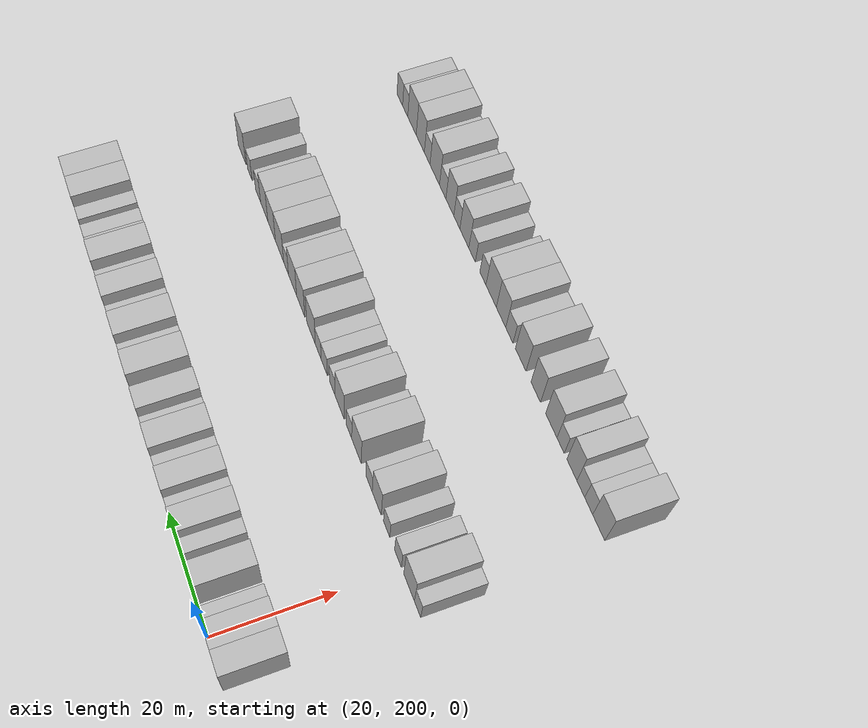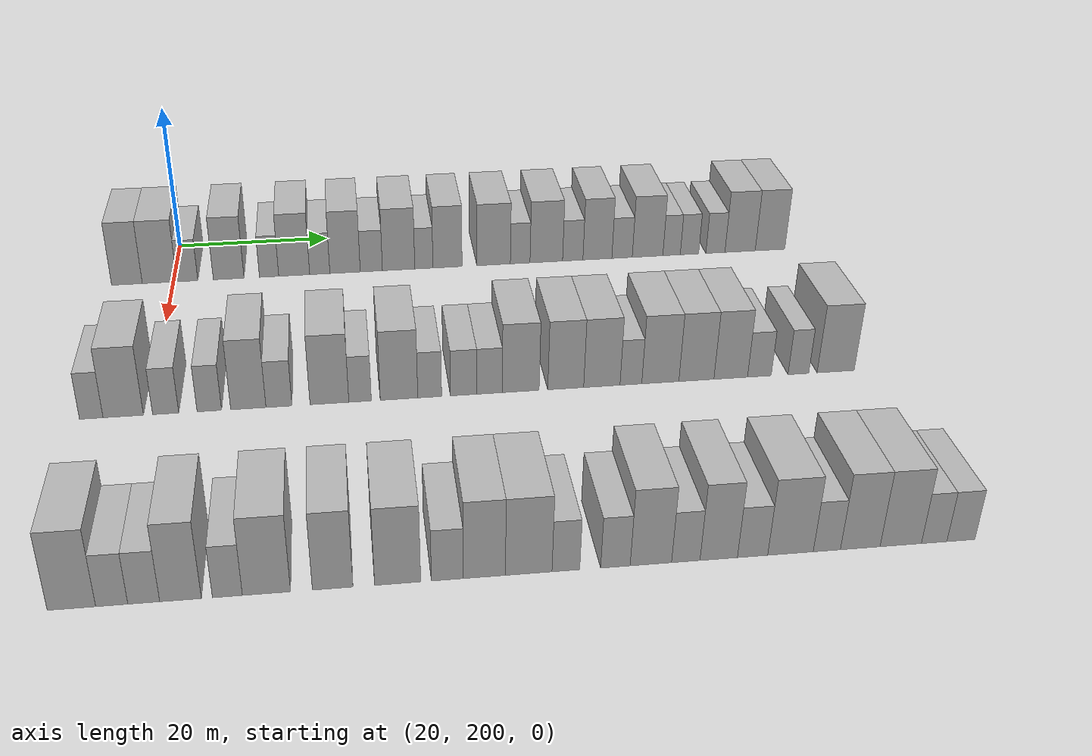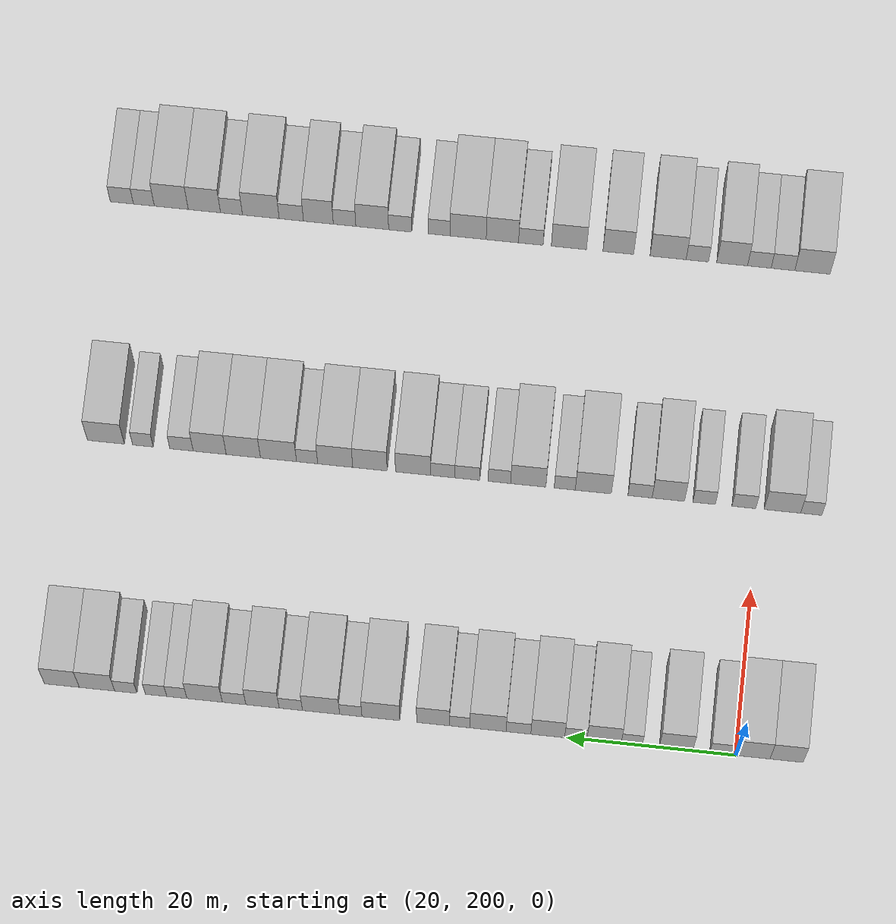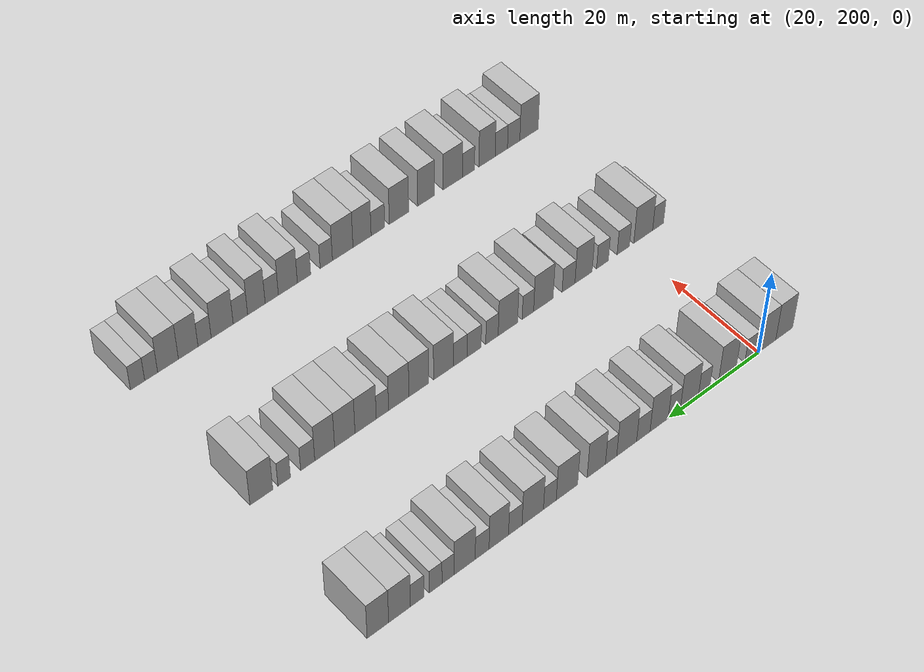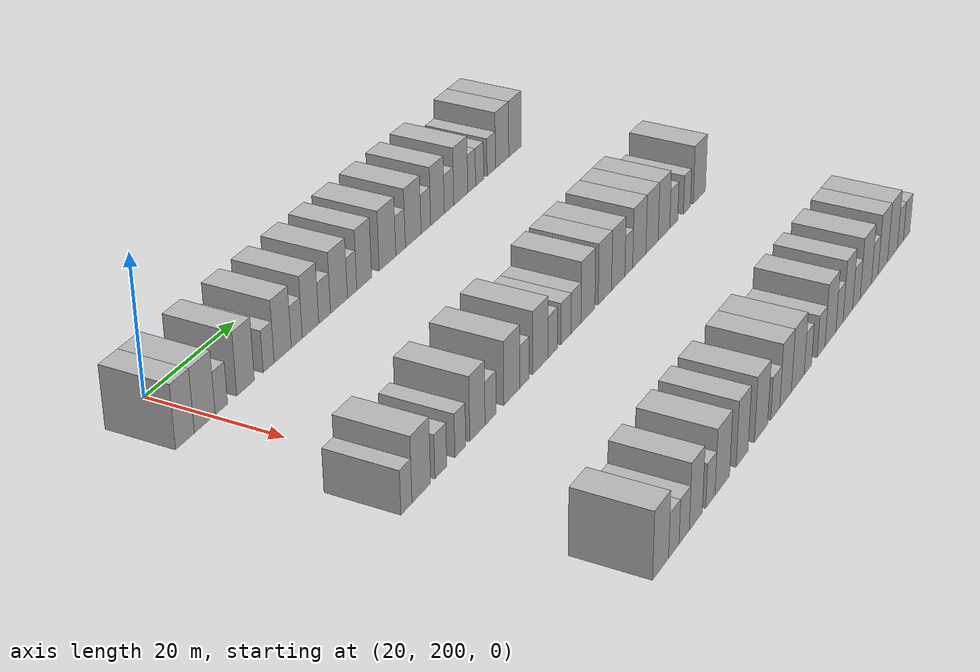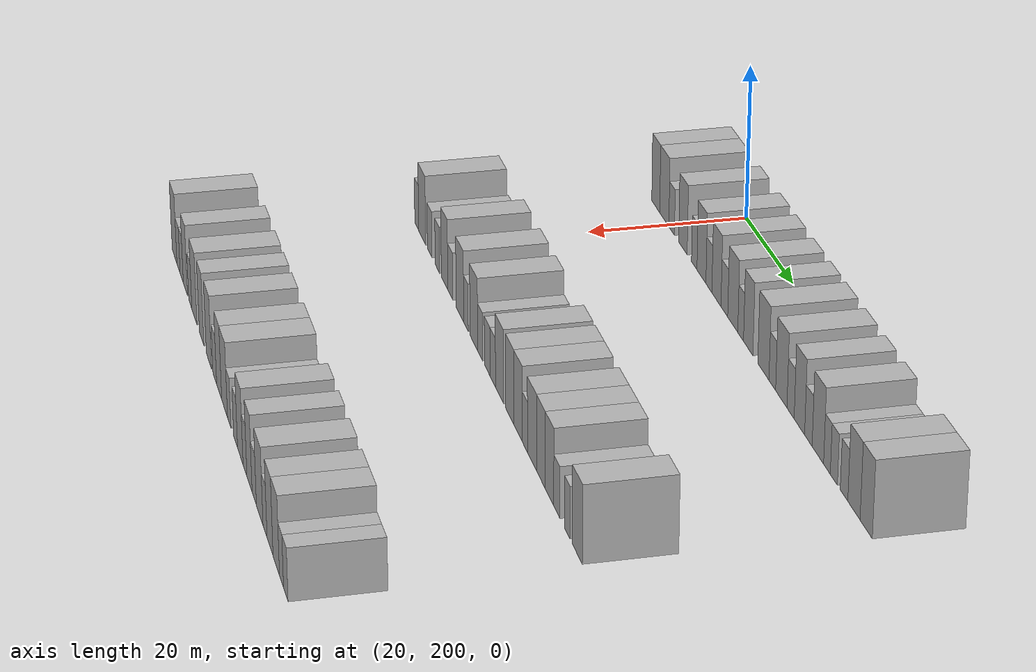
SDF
<sdf version="1.6">
 <world name="default">
  <model name="building_123">
   <static>1</static>
   <pose>25.0000 194.0577 0 0.000000 0.000000 0.000000</pose>
   <link name="link">
    <pose>0 0 4.50 0 0 0</pose>
    <collision name="collision"><geometry><box><size>10.0000 3.9071 9.0000</size></box></geometry></collision>
    <visual name="visual">
     <cast_shadows>0</cast_shadows>
     <geometry><box><size>10.0000 3.9071 9.0000</size></box></geometry>
     <material>
      <script>
       <uri>model://HANNAS_wall/materials/scripts</uri>
       <uri>model://HANNAS_wall/materials/textures</uri>
       <name>vrc/HANNAS_wall</name>
      </script>
     </material>
    </visual>
   </link>
  </model>
  <model name="building_124">
   <static>1</static>
   <pose>25.0000 198.2306 0 0.000000 0.000000 0.000000</pose>
   <link name="link">
    <pose>0 0 4.50 0 0 0</pose>
    <collision name="collision"><geometry><box><size>10.0000 4.4389 9.0000</size></box></geometry></collision>
    <visual name="visual">
     <cast_shadows>0</cast_shadows>
     <geometry><box><size>10.0000 4.4389 9.0000</size></box></geometry>
     <material>
      <script>
       <uri>model://HANNAS_wall/materials/scripts</uri>
       <uri>model://HANNAS_wall/materials/textures</uri>
       <name>vrc/HANNAS_wall</name>
      </script>
     </material>
    </visual>
   </link>
  </model>
  <model name="building_125">
   <static>1</static>
   <pose>25.0000 201.7926 0 0.000000 0.000000 0.000000</pose>
   <link name="link">
    <pose>0 0 3.00 0 0 0</pose>
    <collision name="collision"><geometry><box><size>10.0000 2.6850 6.0000</size></box></geometry></collision>
    <visual name="visual">
     <cast_shadows>0</cast_shadows>
     <geometry><box><size>10.0000 2.6850 6.0000</size></box></geometry>
     <material>
      <script>
       <uri>model://HANNAS_wall/materials/scripts</uri>
       <uri>model://HANNAS_wall/materials/textures</uri>
       <name>vrc/HANNAS_wall</name>
      </script>
     </material>
    </visual>
   </link>
  </model>
  <model name="building_126">
   <static>1</static>
   <pose>25.0000 207.1161 0 0.000000 0.000000 0.000000</pose>
   <link name="link">
    <pose>0 0 4.50 0 0 0</pose>
    <collision name="collision"><geometry><box><size>10.0000 3.9621 9.0000</size></box></geometry></collision>
    <visual name="visual">
     <cast_shadows>0</cast_shadows>
     <geometry><box><size>10.0000 3.9621 9.0000</size></box></geometry>
     <material>
      <script>
       <uri>model://HANNAS_wall/materials/scripts</uri>
       <uri>model://HANNAS_wall/materials/textures</uri>
       <name>vrc/HANNAS_wall</name>
      </script>
     </material>
    </visual>
   </link>
  </model>
  <model name="building_127">
   <static>1</static>
   <pose>25.0000 212.3497 0 0.000000 0.000000 0.000000</pose>
   <link name="link">
    <pose>0 0 3.00 0 0 0</pose>
    <collision name="collision"><geometry><box><size>10.0000 2.5050 6.0000</size></box></geometry></collision>
    <visual name="visual">
     <cast_shadows>0</cast_shadows>
     <geometry><box><size>10.0000 2.5050 6.0000</size></box></geometry>
     <material>
      <script>
       <uri>model://HANNAS_wall/materials/scripts</uri>
       <uri>model://HANNAS_wall/materials/textures</uri>
       <name>vrc/HANNAS_wall</name>
      </script>
     </material>
    </visual>
   </link>
  </model>
  <model name="building_128">
   <static>1</static>
   <pose>25.0000 215.6218 0 0.000000 0.000000 0.000000</pose>
   <link name="link">
    <pose>0 0 4.50 0 0 0</pose>
    <collision name="collision"><geometry><box><size>10.0000 4.0392 9.0000</size></box></geometry></collision>
    <visual name="visual">
     <cast_shadows>0</cast_shadows>
     <geometry><box><size>10.0000 4.0392 9.0000</size></box></geometry>
     <material>
      <script>
       <uri>model://HANNAS_wall/materials/scripts</uri>
       <uri>model://HANNAS_wall/materials/textures</uri>
       <name>vrc/HANNAS_wall</name>
      </script>
     </material>
    </visual>
   </link>
  </model>
  <model name="building_129">
   <static>1</static>
   <pose>25.0000 218.9604 0 0.000000 0.000000 0.000000</pose>
   <link name="link">
    <pose>0 0 3.00 0 0 0</pose>
    <collision name="collision"><geometry><box><size>10.0000 2.6381 6.0000</size></box></geometry></collision>
    <visual name="visual">
     <cast_shadows>0</cast_shadows>
     <geometry><box><size>10.0000 2.6381 6.0000</size></box></geometry>
     <material>
      <script>
       <uri>model://HANNAS_wall/materials/scripts</uri>
       <uri>model://HANNAS_wall/materials/textures</uri>
       <name>vrc/HANNAS_wall</name>
      </script>
     </material>
    </visual>
   </link>
  </model>
  <model name="building_130">
   <static>1</static>
   <pose>25.0000 222.2775 0 0.000000 0.000000 0.000000</pose>
   <link name="link">
    <pose>0 0 4.50 0 0 0</pose>
    <collision name="collision"><geometry><box><size>10.0000 3.9960 9.0000</size></box></geometry></collision>
    <visual name="visual">
     <cast_shadows>0</cast_shadows>
     <geometry><box><size>10.0000 3.9960 9.0000</size></box></geometry>
     <material>
      <script>
       <uri>model://HANNAS_wall/materials/scripts</uri>
       <uri>model://HANNAS_wall/materials/textures</uri>
       <name>vrc/HANNAS_wall</name>
      </script>
     </material>
    </visual>
   </link>
  </model>
  <model name="building_131">
   <static>1</static>
   <pose>25.0000 225.7371 0 0.000000 0.000000 0.000000</pose>
   <link name="link">
    <pose>0 0 3.00 0 0 0</pose>
    <collision name="collision"><geometry><box><size>10.0000 2.9233 6.0000</size></box></geometry></collision>
    <visual name="visual">
     <cast_shadows>0</cast_shadows>
     <geometry><box><size>10.0000 2.9233 6.0000</size></box></geometry>
     <material>
      <script>
       <uri>model://HANNAS_wall/materials/scripts</uri>
       <uri>model://HANNAS_wall/materials/textures</uri>
       <name>vrc/HANNAS_wall</name>
      </script>
     </material>
    </visual>
   </link>
  </model>
  <model name="building_132">
   <static>1</static>
   <pose>25.0000 229.3410 0 0.000000 0.000000 0.000000</pose>
   <link name="link">
    <pose>0 0 4.50 0 0 0</pose>
    <collision name="collision"><geometry><box><size>10.0000 4.2844 9.0000</size></box></geometry></collision>
    <visual name="visual">
     <cast_shadows>0</cast_shadows>
     <geometry><box><size>10.0000 4.2844 9.0000</size></box></geometry>
     <material>
      <script>
       <uri>model://HANNAS_wall/materials/scripts</uri>
       <uri>model://HANNAS_wall/materials/textures</uri>
       <name>vrc/HANNAS_wall</name>
      </script>
     </material>
    </visual>
   </link>
  </model>
  <model name="building_133">
   <static>1</static>
   <pose>25.0000 232.6871 0 0.000000 0.000000 0.000000</pose>
   <link name="link">
    <pose>0 0 3.00 0 0 0</pose>
    <collision name="collision"><geometry><box><size>10.0000 2.4078 6.0000</size></box></geometry></collision>
    <visual name="visual">
     <cast_shadows>0</cast_shadows>
     <geometry><box><size>10.0000 2.4078 6.0000</size></box></geometry>
     <material>
      <script>
       <uri>model://HANNAS_wall/materials/scripts</uri>
       <uri>model://HANNAS_wall/materials/textures</uri>
       <name>vrc/HANNAS_wall</name>
      </script>
     </material>
    </visual>
   </link>
  </model>
  <model name="building_134">
   <static>1</static>
   <pose>25.0000 235.8330 0 0.000000 0.000000 0.000000</pose>
   <link name="link">
    <pose>0 0 4.50 0 0 0</pose>
    <collision name="collision"><geometry><box><size>10.0000 3.8840 9.0000</size></box></geometry></collision>
    <visual name="visual">
     <cast_shadows>0</cast_shadows>
     <geometry><box><size>10.0000 3.8840 9.0000</size></box></geometry>
     <material>
      <script>
       <uri>model://HANNAS_wall/materials/scripts</uri>
       <uri>model://HANNAS_wall/materials/textures</uri>
       <name>vrc/HANNAS_wall</name>
      </script>
     </material>
    </visual>
   </link>
  </model>
  <model name="building_135">
   <static>1</static>
   <pose>25.0000 242.0177 0 0.000000 0.000000 0.000000</pose>
   <link name="link">
    <pose>0 0 4.50 0 0 0</pose>
    <collision name="collision"><geometry><box><size>10.0000 4.4853 9.0000</size></box></geometry></collision>
    <visual name="visual">
     <cast_shadows>0</cast_shadows>
     <geometry><box><size>10.0000 4.4853 9.0000</size></box></geometry>
     <material>
      <script>
       <uri>model://HANNAS_wall/materials/scripts</uri>
       <uri>model://HANNAS_wall/materials/textures</uri>
       <name>vrc/HANNAS_wall</name>
      </script>
     </material>
    </visual>
   </link>
  </model>
  <model name="building_136">
   <static>1</static>
   <pose>25.0000 245.5828 0 0.000000 0.000000 0.000000</pose>
   <link name="link">
    <pose>0 0 3.00 0 0 0</pose>
    <collision name="collision"><geometry><box><size>10.0000 2.6449 6.0000</size></box></geometry></collision>
    <visual name="visual">
     <cast_shadows>0</cast_shadows>
     <geometry><box><size>10.0000 2.6449 6.0000</size></box></geometry>
     <material>
      <script>
       <uri>model://HANNAS_wall/materials/scripts</uri>
       <uri>model://HANNAS_wall/materials/textures</uri>
       <name>vrc/HANNAS_wall</name>
      </script>
     </material>
    </visual>
   </link>
  </model>
  <model name="building_137">
   <static>1</static>
   <pose>25.0000 249.1103 0 0.000000 0.000000 0.000000</pose>
   <link name="link">
    <pose>0 0 4.50 0 0 0</pose>
    <collision name="collision"><geometry><box><size>10.0000 4.4101 9.0000</size></box></geometry></collision>
    <visual name="visual">
     <cast_shadows>0</cast_shadows>
     <geometry><box><size>10.0000 4.4101 9.0000</size></box></geometry>
     <material>
      <script>
       <uri>model://HANNAS_wall/materials/scripts</uri>
       <uri>model://HANNAS_wall/materials/textures</uri>
       <name>vrc/HANNAS_wall</name>
      </script>
     </material>
    </visual>
   </link>
  </model>
  <model name="building_138">
   <static>1</static>
   <pose>25.0000 252.6983 0 0.000000 0.000000 0.000000</pose>
   <link name="link">
    <pose>0 0 3.00 0 0 0</pose>
    <collision name="collision"><geometry><box><size>10.0000 2.7658 6.0000</size></box></geometry></collision>
    <visual name="visual">
     <cast_shadows>0</cast_shadows>
     <geometry><box><size>10.0000 2.7658 6.0000</size></box></geometry>
     <material>
      <script>
       <uri>model://HANNAS_wall/materials/scripts</uri>
       <uri>model://HANNAS_wall/materials/textures</uri>
       <name>vrc/HANNAS_wall</name>
      </script>
     </material>
    </visual>
   </link>
  </model>
  <model name="building_139">
   <static>1</static>
   <pose>25.0000 256.0548 0 0.000000 0.000000 0.000000</pose>
   <link name="link">
    <pose>0 0 4.50 0 0 0</pose>
    <collision name="collision"><geometry><box><size>10.0000 3.9474 9.0000</size></box></geometry></collision>
    <visual name="visual">
     <cast_shadows>0</cast_shadows>
     <geometry><box><size>10.0000 3.9474 9.0000</size></box></geometry>
     <material>
      <script>
       <uri>model://HANNAS_wall/materials/scripts</uri>
       <uri>model://HANNAS_wall/materials/textures</uri>
       <name>vrc/HANNAS_wall</name>
      </script>
     </material>
    </visual>
   </link>
  </model>
  <model name="building_140">
   <static>1</static>
   <pose>25.0000 259.4243 0 0.000000 0.000000 0.000000</pose>
   <link name="link">
    <pose>0 0 3.00 0 0 0</pose>
    <collision name="collision"><geometry><box><size>10.0000 2.7915 6.0000</size></box></geometry></collision>
    <visual name="visual">
     <cast_shadows>0</cast_shadows>
     <geometry><box><size>10.0000 2.7915 6.0000</size></box></geometry>
     <material>
      <script>
       <uri>model://HANNAS_wall/materials/scripts</uri>
       <uri>model://HANNAS_wall/materials/textures</uri>
       <name>vrc/HANNAS_wall</name>
      </script>
     </material>
    </visual>
   </link>
  </model>
  <model name="building_141">
   <static>1</static>
   <pose>25.0000 262.9224 0 0.000000 0.000000 0.000000</pose>
   <link name="link">
    <pose>0 0 4.50 0 0 0</pose>
    <collision name="collision"><geometry><box><size>10.0000 4.2047 9.0000</size></box></geometry></collision>
    <visual name="visual">
     <cast_shadows>0</cast_shadows>
     <geometry><box><size>10.0000 4.2047 9.0000</size></box></geometry>
     <material>
      <script>
       <uri>model://HANNAS_wall/materials/scripts</uri>
       <uri>model://HANNAS_wall/materials/textures</uri>
       <name>vrc/HANNAS_wall</name>
      </script>
     </material>
    </visual>
   </link>
  </model>
  <model name="building_142">
   <static>1</static>
   <pose>25.0000 266.2257 0 0.000000 0.000000 0.000000</pose>
   <link name="link">
    <pose>0 0 3.00 0 0 0</pose>
    <collision name="collision"><geometry><box><size>10.0000 2.4020 6.0000</size></box></geometry></collision>
    <visual name="visual">
     <cast_shadows>0</cast_shadows>
     <geometry><box><size>10.0000 2.4020 6.0000</size></box></geometry>
     <material>
      <script>
       <uri>model://HANNAS_wall/materials/scripts</uri>
       <uri>model://HANNAS_wall/materials/textures</uri>
       <name>vrc/HANNAS_wall</name>
      </script>
     </material>
    </visual>
   </link>
  </model>
  <model name="building_143">
   <static>1</static>
   <pose>25.0000 268.6956 0 0.000000 0.000000 0.000000</pose>
   <link name="link">
    <pose>0 0 3.00 0 0 0</pose>
    <collision name="collision"><geometry><box><size>10.0000 2.5378 6.0000</size></box></geometry></collision>
    <visual name="visual">
     <cast_shadows>0</cast_shadows>
     <geometry><box><size>10.0000 2.5378 6.0000</size></box></geometry>
     <material>
      <script>
       <uri>model://HANNAS_wall/materials/scripts</uri>
       <uri>model://HANNAS_wall/materials/textures</uri>
       <name>vrc/HANNAS_wall</name>
      </script>
     </material>
    </visual>
   </link>
  </model>
  <model name="building_144">
   <static>1</static>
   <pose>25.0000 272.2869 0 0.000000 0.000000 0.000000</pose>
   <link name="link">
    <pose>0 0 3.00 0 0 0</pose>
    <collision name="collision"><geometry><box><size>10.0000 2.6449 6.0000</size></box></geometry></collision>
    <visual name="visual">
     <cast_shadows>0</cast_shadows>
     <geometry><box><size>10.0000 2.6449 6.0000</size></box></geometry>
     <material>
      <script>
       <uri>model://HANNAS_wall/materials/scripts</uri>
       <uri>model://HANNAS_wall/materials/textures</uri>
       <name>vrc/HANNAS_wall</name>
      </script>
     </material>
    </visual>
   </link>
  </model>
  <model name="building_145">
   <static>1</static>
   <pose>25.0000 275.7179 0 0.000000 0.000000 0.000000</pose>
   <link name="link">
    <pose>0 0 4.50 0 0 0</pose>
    <collision name="collision"><geometry><box><size>10.0000 4.2171 9.0000</size></box></geometry></collision>
    <visual name="visual">
     <cast_shadows>0</cast_shadows>
     <geometry><box><size>10.0000 4.2171 9.0000</size></box></geometry>
     <material>
      <script>
       <uri>model://HANNAS_wall/materials/scripts</uri>
       <uri>model://HANNAS_wall/materials/textures</uri>
       <name>vrc/HANNAS_wall</name>
      </script>
     </material>
    </visual>
   </link>
  </model>
  <model name="building_146">
   <static>1</static>
   <pose>25.0000 279.8933 0 0.000000 0.000000 0.000000</pose>
   <link name="link">
    <pose>0 0 4.50 0 0 0</pose>
    <collision name="collision"><geometry><box><size>10.0000 4.1337 9.0000</size></box></geometry></collision>
    <visual name="visual">
     <cast_shadows>0</cast_shadows>
     <geometry><box><size>10.0000 4.1337 9.0000</size></box></geometry>
     <material>
      <script>
       <uri>model://HANNAS_wall/materials/scripts</uri>
       <uri>model://HANNAS_wall/materials/textures</uri>
       <name>vrc/HANNAS_wall</name>
      </script>
     </material>
    </visual>
   </link>
  </model>
  <model name="building_265">
   <static>1</static>
   <pose>55.0000 193.6743 0 0.000000 0.000000 0.000000</pose>
   <link name="link">
    <pose>0 0 3.00 0 0 0</pose>
    <collision name="collision"><geometry><box><size>10.0000 2.5410 6.0000</size></box></geometry></collision>
    <visual name="visual">
     <cast_shadows>0</cast_shadows>
     <geometry><box><size>10.0000 2.5410 6.0000</size></box></geometry>
     <material>
      <script>
       <uri>model://HANNAS_wall/materials/scripts</uri>
       <uri>model://HANNAS_wall/materials/textures</uri>
       <name>vrc/HANNAS_wall</name>
      </script>
     </material>
    </visual>
   </link>
  </model>
  <model name="building_266">
   <static>1</static>
   <pose>55.0000 197.1326 0 0.000000 0.000000 0.000000</pose>
   <link name="link">
    <pose>0 0 4.50 0 0 0</pose>
    <collision name="collision"><geometry><box><size>10.0000 4.3757 9.0000</size></box></geometry></collision>
    <visual name="visual">
     <cast_shadows>0</cast_shadows>
     <geometry><box><size>10.0000 4.3757 9.0000</size></box></geometry>
     <material>
      <script>
       <uri>model://HANNAS_wall/materials/scripts</uri>
       <uri>model://HANNAS_wall/materials/textures</uri>
       <name>vrc/HANNAS_wall</name>
      </script>
     </material>
    </visual>
   </link>
  </model>
  <model name="building_267">
   <static>1</static>
   <pose>55.0000 201.7453 0 0.000000 0.000000 0.000000</pose>
   <link name="link">
    <pose>0 0 3.00 0 0 0</pose>
    <collision name="collision"><geometry><box><size>10.0000 2.8496 6.0000</size></box></geometry></collision>
    <visual name="visual">
     <cast_shadows>0</cast_shadows>
     <geometry><box><size>10.0000 2.8496 6.0000</size></box></geometry>
     <material>
      <script>
       <uri>model://HANNAS_wall/materials/scripts</uri>
       <uri>model://HANNAS_wall/materials/textures</uri>
       <name>vrc/HANNAS_wall</name>
      </script>
     </material>
    </visual>
   </link>
  </model>
  <model name="building_268">
   <static>1</static>
   <pose>55.0000 206.5138 0 0.000000 0.000000 0.000000</pose>
   <link name="link">
    <pose>0 0 3.00 0 0 0</pose>
    <collision name="collision"><geometry><box><size>10.0000 2.6874 6.0000</size></box></geometry></collision>
    <visual name="visual">
     <cast_shadows>0</cast_shadows>
     <geometry><box><size>10.0000 2.6874 6.0000</size></box></geometry>
     <material>
      <script>
       <uri>model://HANNAS_wall/materials/scripts</uri>
       <uri>model://HANNAS_wall/materials/textures</uri>
       <name>vrc/HANNAS_wall</name>
      </script>
     </material>
    </visual>
   </link>
  </model>
  <model name="building_269">
   <static>1</static>
   <pose>55.0000 210.8011 0 0.000000 0.000000 0.000000</pose>
   <link name="link">
    <pose>0 0 4.50 0 0 0</pose>
    <collision name="collision"><geometry><box><size>10.0000 3.8872 9.0000</size></box></geometry></collision>
    <visual name="visual">
     <cast_shadows>0</cast_shadows>
     <geometry><box><size>10.0000 3.8872 9.0000</size></box></geometry>
     <material>
      <script>
       <uri>model://HANNAS_wall/materials/scripts</uri>
       <uri>model://HANNAS_wall/materials/textures</uri>
       <name>vrc/HANNAS_wall</name>
      </script>
     </material>
    </visual>
   </link>
  </model>
  <model name="building_270">
   <static>1</static>
   <pose>55.0000 214.1882 0 0.000000 0.000000 0.000000</pose>
   <link name="link">
    <pose>0 0 3.00 0 0 0</pose>
    <collision name="collision"><geometry><box><size>10.0000 2.8872 6.0000</size></box></geometry></collision>
    <visual name="visual">
     <cast_shadows>0</cast_shadows>
     <geometry><box><size>10.0000 2.8872 6.0000</size></box></geometry>
     <material>
      <script>
       <uri>model://HANNAS_wall/materials/scripts</uri>
       <uri>model://HANNAS_wall/materials/textures</uri>
       <name>vrc/HANNAS_wall</name>
      </script>
     </material>
    </visual>
   </link>
  </model>
  <model name="building_271">
   <static>1</static>
   <pose>55.0000 219.7954 0 0.000000 0.000000 0.000000</pose>
   <link name="link">
    <pose>0 0 4.50 0 0 0</pose>
    <collision name="collision"><geometry><box><size>10.0000 4.3272 9.0000</size></box></geometry></collision>
    <visual name="visual">
     <cast_shadows>0</cast_shadows>
     <geometry><box><size>10.0000 4.3272 9.0000</size></box></geometry>
     <material>
      <script>
       <uri>model://HANNAS_wall/materials/scripts</uri>
       <uri>model://HANNAS_wall/materials/textures</uri>
       <name>vrc/HANNAS_wall</name>
      </script>
     </material>
    </visual>
   </link>
  </model>
  <model name="building_272">
   <static>1</static>
   <pose>55.0000 223.2206 0 0.000000 0.000000 0.000000</pose>
   <link name="link">
    <pose>0 0 3.00 0 0 0</pose>
    <collision name="collision"><geometry><box><size>10.0000 2.5233 6.0000</size></box></geometry></collision>
    <visual name="visual">
     <cast_shadows>0</cast_shadows>
     <geometry><box><size>10.0000 2.5233 6.0000</size></box></geometry>
     <material>
      <script>
       <uri>model://HANNAS_wall/materials/scripts</uri>
       <uri>model://HANNAS_wall/materials/textures</uri>
       <name>vrc/HANNAS_wall</name>
      </script>
     </material>
    </visual>
   </link>
  </model>
  <model name="building_273">
   <static>1</static>
   <pose>55.0000 227.5957 0 0.000000 0.000000 0.000000</pose>
   <link name="link">
    <pose>0 0 4.50 0 0 0</pose>
    <collision name="collision"><geometry><box><size>10.0000 4.2268 9.0000</size></box></geometry></collision>
    <visual name="visual">
     <cast_shadows>0</cast_shadows>
     <geometry><box><size>10.0000 4.2268 9.0000</size></box></geometry>
     <material>
      <script>
       <uri>model://HANNAS_wall/materials/scripts</uri>
       <uri>model://HANNAS_wall/materials/textures</uri>
       <name>vrc/HANNAS_wall</name>
      </script>
     </material>
    </visual>
   </link>
  </model>
  <model name="building_274">
   <static>1</static>
   <pose>55.0000 231.0573 0 0.000000 0.000000 0.000000</pose>
   <link name="link">
    <pose>0 0 3.00 0 0 0</pose>
    <collision name="collision"><geometry><box><size>10.0000 2.6964 6.0000</size></box></geometry></collision>
    <visual name="visual">
     <cast_shadows>0</cast_shadows>
     <geometry><box><size>10.0000 2.6964 6.0000</size></box></geometry>
     <material>
      <script>
       <uri>model://HANNAS_wall/materials/scripts</uri>
       <uri>model://HANNAS_wall/materials/textures</uri>
       <name>vrc/HANNAS_wall</name>
      </script>
     </material>
    </visual>
   </link>
  </model>
  <model name="building_275">
   <static>1</static>
   <pose>55.0000 234.9024 0 0.000000 0.000000 0.000000</pose>
   <link name="link">
    <pose>0 0 3.00 0 0 0</pose>
    <collision name="collision"><geometry><box><size>10.0000 2.9937 6.0000</size></box></geometry></collision>
    <visual name="visual">
     <cast_shadows>0</cast_shadows>
     <geometry><box><size>10.0000 2.9937 6.0000</size></box></geometry>
     <material>
      <script>
       <uri>model://HANNAS_wall/materials/scripts</uri>
       <uri>model://HANNAS_wall/materials/textures</uri>
       <name>vrc/HANNAS_wall</name>
      </script>
     </material>
    </visual>
   </link>
  </model>
  <model name="building_276">
   <static>1</static>
   <pose>55.0000 237.8443 0 0.000000 0.000000 0.000000</pose>
   <link name="link">
    <pose>0 0 3.00 0 0 0</pose>
    <collision name="collision"><geometry><box><size>10.0000 2.8900 6.0000</size></box></geometry></collision>
    <visual name="visual">
     <cast_shadows>0</cast_shadows>
     <geometry><box><size>10.0000 2.8900 6.0000</size></box></geometry>
     <material>
      <script>
       <uri>model://HANNAS_wall/materials/scripts</uri>
       <uri>model://HANNAS_wall/materials/textures</uri>
       <name>vrc/HANNAS_wall</name>
      </script>
     </material>
    </visual>
   </link>
  </model>
  <model name="building_277">
   <static>1</static>
   <pose>55.0000 241.4112 0 0.000000 0.000000 0.000000</pose>
   <link name="link">
    <pose>0 0 4.50 0 0 0</pose>
    <collision name="collision"><geometry><box><size>10.0000 4.2438 9.0000</size></box></geometry></collision>
    <visual name="visual">
     <cast_shadows>0</cast_shadows>
     <geometry><box><size>10.0000 4.2438 9.0000</size></box></geometry>
     <material>
      <script>
       <uri>model://HANNAS_wall/materials/scripts</uri>
       <uri>model://HANNAS_wall/materials/textures</uri>
       <name>vrc/HANNAS_wall</name>
      </script>
     </material>
    </visual>
   </link>
  </model>
  <model name="building_278">
   <static>1</static>
   <pose>55.0000 246.6069 0 0.000000 0.000000 0.000000</pose>
   <link name="link">
    <pose>0 0 4.50 0 0 0</pose>
    <collision name="collision"><geometry><box><size>10.0000 4.1476 9.0000</size></box></geometry></collision>
    <visual name="visual">
     <cast_shadows>0</cast_shadows>
     <geometry><box><size>10.0000 4.1476 9.0000</size></box></geometry>
     <material>
      <script>
       <uri>model://HANNAS_wall/materials/scripts</uri>
       <uri>model://HANNAS_wall/materials/textures</uri>
       <name>vrc/HANNAS_wall</name>
      </script>
     </material>
    </visual>
   </link>
  </model>
  <model name="building_279">
   <static>1</static>
   <pose>55.0000 250.7885 0 0.000000 0.000000 0.000000</pose>
   <link name="link">
    <pose>0 0 4.50 0 0 0</pose>
    <collision name="collision"><geometry><box><size>10.0000 4.2155 9.0000</size></box></geometry></collision>
    <visual name="visual">
     <cast_shadows>0</cast_shadows>
     <geometry><box><size>10.0000 4.2155 9.0000</size></box></geometry>
     <material>
      <script>
       <uri>model://HANNAS_wall/materials/scripts</uri>
       <uri>model://HANNAS_wall/materials/textures</uri>
       <name>vrc/HANNAS_wall</name>
      </script>
     </material>
    </visual>
   </link>
  </model>
  <model name="building_280">
   <static>1</static>
   <pose>55.0000 254.1654 0 0.000000 0.000000 0.000000</pose>
   <link name="link">
    <pose>0 0 3.00 0 0 0</pose>
    <collision name="collision"><geometry><box><size>10.0000 2.5384 6.0000</size></box></geometry></collision>
    <visual name="visual">
     <cast_shadows>0</cast_shadows>
     <geometry><box><size>10.0000 2.5384 6.0000</size></box></geometry>
     <material>
      <script>
       <uri>model://HANNAS_wall/materials/scripts</uri>
       <uri>model://HANNAS_wall/materials/textures</uri>
       <name>vrc/HANNAS_wall</name>
      </script>
     </material>
    </visual>
   </link>
  </model>
  <model name="building_281">
   <static>1</static>
   <pose>55.0000 257.6046 0 0.000000 0.000000 0.000000</pose>
   <link name="link">
    <pose>0 0 4.50 0 0 0</pose>
    <collision name="collision"><geometry><box><size>10.0000 4.3400 9.0000</size></box></geometry></collision>
    <visual name="visual">
     <cast_shadows>0</cast_shadows>
     <geometry><box><size>10.0000 4.3400 9.0000</size></box></geometry>
     <material>
      <script>
       <uri>model://HANNAS_wall/materials/scripts</uri>
       <uri>model://HANNAS_wall/materials/textures</uri>
       <name>vrc/HANNAS_wall</name>
      </script>
     </material>
    </visual>
   </link>
  </model>
  <model name="building_282">
   <static>1</static>
   <pose>55.0000 261.8393 0 0.000000 0.000000 0.000000</pose>
   <link name="link">
    <pose>0 0 4.50 0 0 0</pose>
    <collision name="collision"><geometry><box><size>10.0000 4.1294 9.0000</size></box></geometry></collision>
    <visual name="visual">
     <cast_shadows>0</cast_shadows>
     <geometry><box><size>10.0000 4.1294 9.0000</size></box></geometry>
     <material>
      <script>
       <uri>model://HANNAS_wall/materials/scripts</uri>
       <uri>model://HANNAS_wall/materials/textures</uri>
       <name>vrc/HANNAS_wall</name>
      </script>
     </material>
    </visual>
   </link>
  </model>
  <model name="building_283">
   <static>1</static>
   <pose>55.0000 265.8910 0 0.000000 0.000000 0.000000</pose>
   <link name="link">
    <pose>0 0 4.50 0 0 0</pose>
    <collision name="collision"><geometry><box><size>10.0000 3.9740 9.0000</size></box></geometry></collision>
    <visual name="visual">
     <cast_shadows>0</cast_shadows>
     <geometry><box><size>10.0000 3.9740 9.0000</size></box></geometry>
     <material>
      <script>
       <uri>model://HANNAS_wall/materials/scripts</uri>
       <uri>model://HANNAS_wall/materials/textures</uri>
       <name>vrc/HANNAS_wall</name>
      </script>
     </material>
    </visual>
   </link>
  </model>
  <model name="building_284">
   <static>1</static>
   <pose>55.0000 269.2871 0 0.000000 0.000000 0.000000</pose>
   <link name="link">
    <pose>0 0 3.00 0 0 0</pose>
    <collision name="collision"><geometry><box><size>10.0000 2.8182 6.0000</size></box></geometry></collision>
    <visual name="visual">
     <cast_shadows>0</cast_shadows>
     <geometry><box><size>10.0000 2.8182 6.0000</size></box></geometry>
     <material>
      <script>
       <uri>model://HANNAS_wall/materials/scripts</uri>
       <uri>model://HANNAS_wall/materials/textures</uri>
       <name>vrc/HANNAS_wall</name>
      </script>
     </material>
    </visual>
   </link>
  </model>
  <model name="building_285">
   <static>1</static>
   <pose>55.0000 273.9362 0 0.000000 0.000000 0.000000</pose>
   <link name="link">
    <pose>0 0 3.00 0 0 0</pose>
    <collision name="collision"><geometry><box><size>10.0000 2.4801 6.0000</size></box></geometry></collision>
    <visual name="visual">
     <cast_shadows>0</cast_shadows>
     <geometry><box><size>10.0000 2.4801 6.0000</size></box></geometry>
     <material>
      <script>
       <uri>model://HANNAS_wall/materials/scripts</uri>
       <uri>model://HANNAS_wall/materials/textures</uri>
       <name>vrc/HANNAS_wall</name>
      </script>
     </material>
    </visual>
   </link>
  </model>
  <model name="building_286">
   <static>1</static>
   <pose>55.0000 278.4051 0 0.000000 0.000000 0.000000</pose>
   <link name="link">
    <pose>0 0 4.50 0 0 0</pose>
    <collision name="collision"><geometry><box><size>10.0000 4.4576 9.0000</size></box></geometry></collision>
    <visual name="visual">
     <cast_shadows>0</cast_shadows>
     <geometry><box><size>10.0000 4.4576 9.0000</size></box></geometry>
     <material>
      <script>
       <uri>model://HANNAS_wall/materials/scripts</uri>
       <uri>model://HANNAS_wall/materials/textures</uri>
       <name>vrc/HANNAS_wall</name>
      </script>
     </material>
    </visual>
   </link>
  </model>
  <model name="building_396">
   <static>1</static>
   <pose>85.0000 196.0721 0 0.000000 0.000000 0.000000</pose>
   <link name="link">
    <pose>0 0 4.50 0 0 0</pose>
    <collision name="collision"><geometry><box><size>10.0000 4.2875 9.0000</size></box></geometry></collision>
    <visual name="visual">
     <cast_shadows>0</cast_shadows>
     <geometry><box><size>10.0000 4.2875 9.0000</size></box></geometry>
     <material>
      <script>
       <uri>model://HANNAS_wall/materials/scripts</uri>
       <uri>model://HANNAS_wall/materials/textures</uri>
       <name>vrc/HANNAS_wall</name>
      </script>
     </material>
    </visual>
   </link>
  </model>
  <model name="building_397">
   <static>1</static>
   <pose>85.0000 199.6509 0 0.000000 0.000000 0.000000</pose>
   <link name="link">
    <pose>0 0 3.00 0 0 0</pose>
    <collision name="collision"><geometry><box><size>10.0000 2.8702 6.0000</size></box></geometry></collision>
    <visual name="visual">
     <cast_shadows>0</cast_shadows>
     <geometry><box><size>10.0000 2.8702 6.0000</size></box></geometry>
     <material>
      <script>
       <uri>model://HANNAS_wall/materials/scripts</uri>
       <uri>model://HANNAS_wall/materials/textures</uri>
       <name>vrc/HANNAS_wall</name>
      </script>
     </material>
    </visual>
   </link>
  </model>
  <model name="building_398">
   <static>1</static>
   <pose>85.0000 202.5152 0 0.000000 0.000000 0.000000</pose>
   <link name="link">
    <pose>0 0 3.00 0 0 0</pose>
    <collision name="collision"><geometry><box><size>10.0000 2.8583 6.0000</size></box></geometry></collision>
    <visual name="visual">
     <cast_shadows>0</cast_shadows>
     <geometry><box><size>10.0000 2.8583 6.0000</size></box></geometry>
     <material>
      <script>
       <uri>model://HANNAS_wall/materials/scripts</uri>
       <uri>model://HANNAS_wall/materials/textures</uri>
       <name>vrc/HANNAS_wall</name>
      </script>
     </material>
    </visual>
   </link>
  </model>
  <model name="building_399">
   <static>1</static>
   <pose>85.0000 205.8187 0 0.000000 0.000000 0.000000</pose>
   <link name="link">
    <pose>0 0 4.50 0 0 0</pose>
    <collision name="collision"><geometry><box><size>10.0000 3.7488 9.0000</size></box></geometry></collision>
    <visual name="visual">
     <cast_shadows>0</cast_shadows>
     <geometry><box><size>10.0000 3.7488 9.0000</size></box></geometry>
     <material>
      <script>
       <uri>model://HANNAS_wall/materials/scripts</uri>
       <uri>model://HANNAS_wall/materials/textures</uri>
       <name>vrc/HANNAS_wall</name>
      </script>
     </material>
    </visual>
   </link>
  </model>
  <model name="building_400">
   <static>1</static>
   <pose>85.0000 210.0504 0 0.000000 0.000000 0.000000</pose>
   <link name="link">
    <pose>0 0 3.00 0 0 0</pose>
    <collision name="collision"><geometry><box><size>10.0000 2.7145 6.0000</size></box></geometry></collision>
    <visual name="visual">
     <cast_shadows>0</cast_shadows>
     <geometry><box><size>10.0000 2.7145 6.0000</size></box></geometry>
     <material>
      <script>
       <uri>model://HANNAS_wall/materials/scripts</uri>
       <uri>model://HANNAS_wall/materials/textures</uri>
       <name>vrc/HANNAS_wall</name>
      </script>
     </material>
    </visual>
   </link>
  </model>
  <model name="building_401">
   <static>1</static>
   <pose>85.0000 213.6022 0 0.000000 0.000000 0.000000</pose>
   <link name="link">
    <pose>0 0 4.50 0 0 0</pose>
    <collision name="collision"><geometry><box><size>10.0000 4.3892 9.0000</size></box></geometry></collision>
    <visual name="visual">
     <cast_shadows>0</cast_shadows>
     <geometry><box><size>10.0000 4.3892 9.0000</size></box></geometry>
     <material>
      <script>
       <uri>model://HANNAS_wall/materials/scripts</uri>
       <uri>model://HANNAS_wall/materials/textures</uri>
       <name>vrc/HANNAS_wall</name>
      </script>
     </material>
    </visual>
   </link>
  </model>
  <model name="building_402">
   <static>1</static>
   <pose>85.0000 219.6629 0 0.000000 0.000000 0.000000</pose>
   <link name="link">
    <pose>0 0 4.50 0 0 0</pose>
    <collision name="collision"><geometry><box><size>10.0000 3.7323 9.0000</size></box></geometry></collision>
    <visual name="visual">
     <cast_shadows>0</cast_shadows>
     <geometry><box><size>10.0000 3.7323 9.0000</size></box></geometry>
     <material>
      <script>
       <uri>model://HANNAS_wall/materials/scripts</uri>
       <uri>model://HANNAS_wall/materials/textures</uri>
       <name>vrc/HANNAS_wall</name>
      </script>
     </material>
    </visual>
   </link>
  </model>
  <model name="building_403">
   <static>1</static>
   <pose>85.0000 225.6681 0 0.000000 0.000000 0.000000</pose>
   <link name="link">
    <pose>0 0 4.50 0 0 0</pose>
    <collision name="collision"><geometry><box><size>10.0000 4.2781 9.0000</size></box></geometry></collision>
    <visual name="visual">
     <cast_shadows>0</cast_shadows>
     <geometry><box><size>10.0000 4.2781 9.0000</size></box></geometry>
     <material>
      <script>
       <uri>model://HANNAS_wall/materials/scripts</uri>
       <uri>model://HANNAS_wall/materials/textures</uri>
       <name>vrc/HANNAS_wall</name>
      </script>
     </material>
    </visual>
   </link>
  </model>
  <model name="building_404">
   <static>1</static>
   <pose>85.0000 230.2995 0 0.000000 0.000000 0.000000</pose>
   <link name="link">
    <pose>0 0 3.00 0 0 0</pose>
    <collision name="collision"><geometry><box><size>10.0000 2.9846 6.0000</size></box></geometry></collision>
    <visual name="visual">
     <cast_shadows>0</cast_shadows>
     <geometry><box><size>10.0000 2.9846 6.0000</size></box></geometry>
     <material>
      <script>
       <uri>model://HANNAS_wall/materials/scripts</uri>
       <uri>model://HANNAS_wall/materials/textures</uri>
       <name>vrc/HANNAS_wall</name>
      </script>
     </material>
    </visual>
   </link>
  </model>
  <model name="building_405">
   <static>1</static>
   <pose>85.0000 233.7645 0 0.000000 0.000000 0.000000</pose>
   <link name="link">
    <pose>0 0 4.50 0 0 0</pose>
    <collision name="collision"><geometry><box><size>10.0000 3.9454 9.0000</size></box></geometry></collision>
    <visual name="visual">
     <cast_shadows>0</cast_shadows>
     <geometry><box><size>10.0000 3.9454 9.0000</size></box></geometry>
     <material>
      <script>
       <uri>model://HANNAS_wall/materials/scripts</uri>
       <uri>model://HANNAS_wall/materials/textures</uri>
       <name>vrc/HANNAS_wall</name>
      </script>
     </material>
    </visual>
   </link>
  </model>
  <model name="building_406">
   <static>1</static>
   <pose>85.0000 237.9472 0 0.000000 0.000000 0.000000</pose>
   <link name="link">
    <pose>0 0 4.50 0 0 0</pose>
    <collision name="collision"><geometry><box><size>10.0000 4.4200 9.0000</size></box></geometry></collision>
    <visual name="visual">
     <cast_shadows>0</cast_shadows>
     <geometry><box><size>10.0000 4.4200 9.0000</size></box></geometry>
     <material>
      <script>
       <uri>model://HANNAS_wall/materials/scripts</uri>
       <uri>model://HANNAS_wall/materials/textures</uri>
       <name>vrc/HANNAS_wall</name>
      </script>
     </material>
    </visual>
   </link>
  </model>
  <model name="building_407">
   <static>1</static>
   <pose>85.0000 241.4769 0 0.000000 0.000000 0.000000</pose>
   <link name="link">
    <pose>0 0 3.00 0 0 0</pose>
    <collision name="collision"><geometry><box><size>10.0000 2.6393 6.0000</size></box></geometry></collision>
    <visual name="visual">
     <cast_shadows>0</cast_shadows>
     <geometry><box><size>10.0000 2.6393 6.0000</size></box></geometry>
     <material>
      <script>
       <uri>model://HANNAS_wall/materials/scripts</uri>
       <uri>model://HANNAS_wall/materials/textures</uri>
       <name>vrc/HANNAS_wall</name>
      </script>
     </material>
    </visual>
   </link>
  </model>
  <model name="building_408">
   <static>1</static>
   <pose>85.0000 246.2121 0 0.000000 0.000000 0.000000</pose>
   <link name="link">
    <pose>0 0 3.00 0 0 0</pose>
    <collision name="collision"><geometry><box><size>10.0000 2.8311 6.0000</size></box></geometry></collision>
    <visual name="visual">
     <cast_shadows>0</cast_shadows>
     <geometry><box><size>10.0000 2.8311 6.0000</size></box></geometry>
     <material>
      <script>
       <uri>model://HANNAS_wall/materials/scripts</uri>
       <uri>model://HANNAS_wall/materials/textures</uri>
       <name>vrc/HANNAS_wall</name>
      </script>
     </material>
    </visual>
   </link>
  </model>
  <model name="building_409">
   <static>1</static>
   <pose>85.0000 249.6238 0 0.000000 0.000000 0.000000</pose>
   <link name="link">
    <pose>0 0 4.50 0 0 0</pose>
    <collision name="collision"><geometry><box><size>10.0000 3.9922 9.0000</size></box></geometry></collision>
    <visual name="visual">
     <cast_shadows>0</cast_shadows>
     <geometry><box><size>10.0000 3.9922 9.0000</size></box></geometry>
     <material>
      <script>
       <uri>model://HANNAS_wall/materials/scripts</uri>
       <uri>model://HANNAS_wall/materials/textures</uri>
       <name>vrc/HANNAS_wall</name>
      </script>
     </material>
    </visual>
   </link>
  </model>
  <model name="building_410">
   <static>1</static>
   <pose>85.0000 252.9960 0 0.000000 0.000000 0.000000</pose>
   <link name="link">
    <pose>0 0 3.00 0 0 0</pose>
    <collision name="collision"><geometry><box><size>10.0000 2.7522 6.0000</size></box></geometry></collision>
    <visual name="visual">
     <cast_shadows>0</cast_shadows>
     <geometry><box><size>10.0000 2.7522 6.0000</size></box></geometry>
     <material>
      <script>
       <uri>model://HANNAS_wall/materials/scripts</uri>
       <uri>model://HANNAS_wall/materials/textures</uri>
       <name>vrc/HANNAS_wall</name>
      </script>
     </material>
    </visual>
   </link>
  </model>
  <model name="building_411">
   <static>1</static>
   <pose>85.0000 256.1933 0 0.000000 0.000000 0.000000</pose>
   <link name="link">
    <pose>0 0 4.50 0 0 0</pose>
    <collision name="collision"><geometry><box><size>10.0000 3.6425 9.0000</size></box></geometry></collision>
    <visual name="visual">
     <cast_shadows>0</cast_shadows>
     <geometry><box><size>10.0000 3.6425 9.0000</size></box></geometry>
     <material>
      <script>
       <uri>model://HANNAS_wall/materials/scripts</uri>
       <uri>model://HANNAS_wall/materials/textures</uri>
       <name>vrc/HANNAS_wall</name>
      </script>
     </material>
    </visual>
   </link>
  </model>
  <model name="building_412">
   <static>1</static>
   <pose>85.0000 259.4976 0 0.000000 0.000000 0.000000</pose>
   <link name="link">
    <pose>0 0 3.00 0 0 0</pose>
    <collision name="collision"><geometry><box><size>10.0000 2.9660 6.0000</size></box></geometry></collision>
    <visual name="visual">
     <cast_shadows>0</cast_shadows>
     <geometry><box><size>10.0000 2.9660 6.0000</size></box></geometry>
     <material>
      <script>
       <uri>model://HANNAS_wall/materials/scripts</uri>
       <uri>model://HANNAS_wall/materials/textures</uri>
       <name>vrc/HANNAS_wall</name>
      </script>
     </material>
    </visual>
   </link>
  </model>
  <model name="building_413">
   <static>1</static>
   <pose>85.0000 263.2221 0 0.000000 0.000000 0.000000</pose>
   <link name="link">
    <pose>0 0 4.50 0 0 0</pose>
    <collision name="collision"><geometry><box><size>10.0000 4.4831 9.0000</size></box></geometry></collision>
    <visual name="visual">
     <cast_shadows>0</cast_shadows>
     <geometry><box><size>10.0000 4.4831 9.0000</size></box></geometry>
     <material>
      <script>
       <uri>model://HANNAS_wall/materials/scripts</uri>
       <uri>model://HANNAS_wall/materials/textures</uri>
       <name>vrc/HANNAS_wall</name>
      </script>
     </material>
    </visual>
   </link>
  </model>
  <model name="building_414">
   <static>1</static>
   <pose>85.0000 266.8073 0 0.000000 0.000000 0.000000</pose>
   <link name="link">
    <pose>0 0 3.00 0 0 0</pose>
    <collision name="collision"><geometry><box><size>10.0000 2.6873 6.0000</size></box></geometry></collision>
    <visual name="visual">
     <cast_shadows>0</cast_shadows>
     <geometry><box><size>10.0000 2.6873 6.0000</size></box></geometry>
     <material>
      <script>
       <uri>model://HANNAS_wall/materials/scripts</uri>
       <uri>model://HANNAS_wall/materials/textures</uri>
       <name>vrc/HANNAS_wall</name>
      </script>
     </material>
    </visual>
   </link>
  </model>
  <model name="building_415">
   <static>1</static>
   <pose>85.0000 270.1211 0 0.000000 0.000000 0.000000</pose>
   <link name="link">
    <pose>0 0 4.50 0 0 0</pose>
    <collision name="collision"><geometry><box><size>10.0000 3.9404 9.0000</size></box></geometry></collision>
    <visual name="visual">
     <cast_shadows>0</cast_shadows>
     <geometry><box><size>10.0000 3.9404 9.0000</size></box></geometry>
     <material>
      <script>
       <uri>model://HANNAS_wall/materials/scripts</uri>
       <uri>model://HANNAS_wall/materials/textures</uri>
       <name>vrc/HANNAS_wall</name>
      </script>
     </material>
    </visual>
   </link>
  </model>
  <model name="building_416">
   <static>1</static>
   <pose>85.0000 274.1625 0 0.000000 0.000000 0.000000</pose>
   <link name="link">
    <pose>0 0 4.50 0 0 0</pose>
    <collision name="collision"><geometry><box><size>10.0000 4.1425 9.0000</size></box></geometry></collision>
    <visual name="visual">
     <cast_shadows>0</cast_shadows>
     <geometry><box><size>10.0000 4.1425 9.0000</size></box></geometry>
     <material>
      <script>
       <uri>model://HANNAS_wall/materials/scripts</uri>
       <uri>model://HANNAS_wall/materials/textures</uri>
       <name>vrc/HANNAS_wall</name>
      </script>
     </material>
    </visual>
   </link>
  </model>
  <model name="building_417">
   <static>1</static>
   <pose>85.0000 277.5149 0 0.000000 0.000000 0.000000</pose>
   <link name="link">
    <pose>0 0 3.00 0 0 0</pose>
    <collision name="collision"><geometry><box><size>10.0000 2.5623 6.0000</size></box></geometry></collision>
    <visual name="visual">
     <cast_shadows>0</cast_shadows>
     <geometry><box><size>10.0000 2.5623 6.0000</size></box></geometry>
     <material>
      <script>
       <uri>model://HANNAS_wall/materials/scripts</uri>
       <uri>model://HANNAS_wall/materials/textures</uri>
       <name>vrc/HANNAS_wall</name>
      </script>
     </material>
    </visual>
   </link>
  </model>
  <model name="building_418">
   <static>1</static>
   <pose>85.0000 280.2061 0 0.000000 0.000000 0.000000</pose>
   <link name="link">
    <pose>0 0 3.00 0 0 0</pose>
    <collision name="collision"><geometry><box><size>10.0000 2.8200 6.0000</size></box></geometry></collision>
    <visual name="visual">
     <cast_shadows>0</cast_shadows>
     <geometry><box><size>10.0000 2.8200 6.0000</size></box></geometry>
     <material>
      <script>
       <uri>model://HANNAS_wall/materials/scripts</uri>
       <uri>model://HANNAS_wall/materials/textures</uri>
       <name>vrc/HANNAS_wall</name>
      </script>
     </material>
    </visual>
   </link>
  </model>
 </world>
</sdf>
